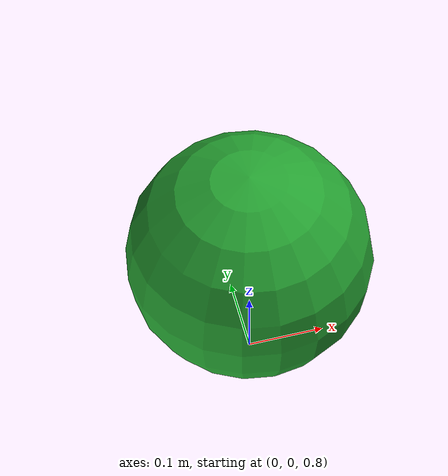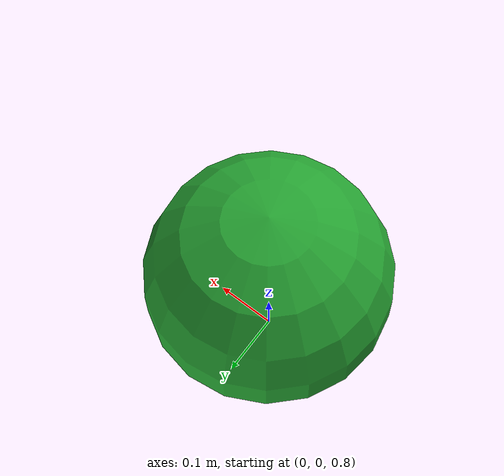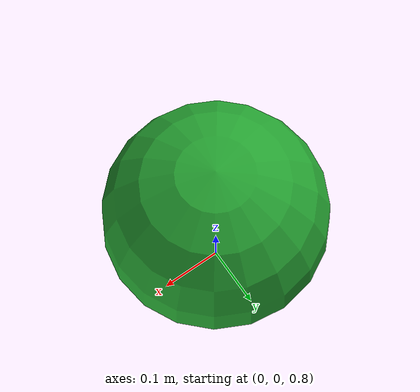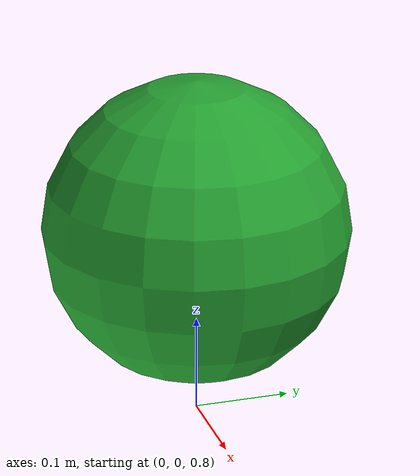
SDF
<?xml version="1.0"?>
<sdf version="1.4">
  <world name="animated_box_world">

    <!-- Ground Plane -->
    <include>
      <uri>model://ground_plane</uri>
    </include>

    <include>
      <uri>model://sun</uri>
    </include>

    <model name="sphere">
      <pose>0 0 1 0 0 0</pose>
      <link name="link">
        <collision name="collision">
          <geometry>
            <sphere>
              <radius>0.1574</radius>
            </sphere>
          </geometry>
        </collision>

        <visual name="visual">
          <geometry>
            <sphere>
              <radius>0.1574</radius>
            </sphere>
          </geometry>
 	  <material>
            <lighting>1</lighting>
            <script>
              <uri>file://media/materials/scripts/gazebo.material</uri>
              <name>Gazebo/Green</name>
            </script>
          </material>
	  </visual>
      </link>

      <plugin name="push_animate" filename="libanimated_box.so"/>
    </model>
  </world>
</sdf>
